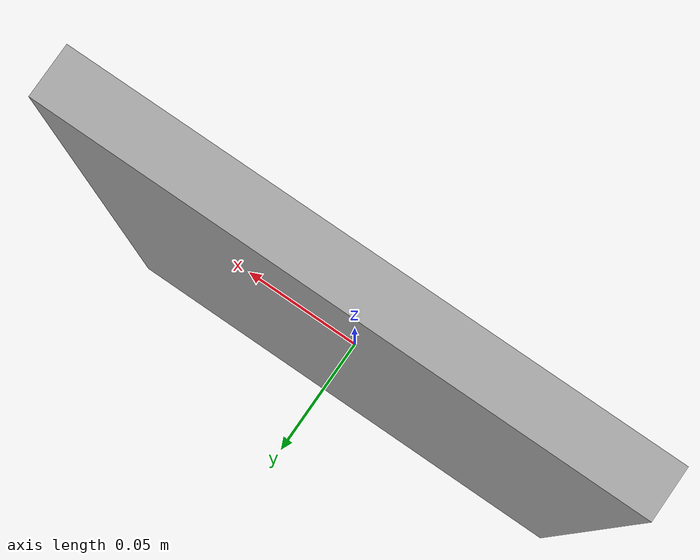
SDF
<?xml version='1.0'?>
<sdf version='1.5'>
  <model name='Big_box'>
    <link name='link'>
      <pose frame=''>0 0 0 0 -0 0</pose>
      <inertial>
        <mass>40</mass>
        <inertia>
          <ixx>1</ixx>
          <ixy>0</ixy>
          <ixz>0</ixz>
          <iyy>1</iyy>
          <iyz>0</iyz>
          <izz>1</izz>
        </inertia>
        <pose frame=''>0 0 0 0 -0 0</pose>
      </inertial>
      <self_collide>0</self_collide>
      <kinematic>0</kinematic>
      <gravity>1</gravity>
      <visual name='visual'>
        <geometry>
          <mesh>
            <uri>model://big_box/meshes/big_box.dae</uri>
            <scale>0.19 0.02 0.22</scale>
          </mesh>
        </geometry>
        <material>
          <shader type='pixel'>
            <normal_map>__default__</normal_map>
          </shader>
        </material>
        <pose frame=''>0 0 0 0 -0 0</pose>
        <cast_shadows>1</cast_shadows>
        <transparency>0</transparency>
      </visual>
      <collision name='collision'>
        <laser_retro>0</laser_retro>
        <max_contacts>10</max_contacts>
        <pose frame=''>0 0 0 0 -0 0</pose>
        <geometry>
          <box>
            <size>0.3 0.02 0.33</size>
          </box>
        </geometry>
        <surface>
          <friction>
            <ode>
              <mu>1</mu>
              <mu2>1</mu2>
              <fdir1>0 0 0</fdir1>
              <slip1>0</slip1>
              <slip2>0</slip2>
            </ode>
            <torsional>
              <coefficient>1</coefficient>
              <patch_radius>0</patch_radius>
              <surface_radius>0</surface_radius>
              <use_patch_radius>1</use_patch_radius>
              <ode>
                <slip>0</slip>
              </ode>
            </torsional>
          </friction>
          <bounce>
            <restitution_coefficient>0</restitution_coefficient>
            <threshold>1e+06</threshold>
          </bounce>
          <contact>
            <collide_without_contact>0</collide_without_contact>
            <collide_without_contact_bitmask>1</collide_without_contact_bitmask>
            <collide_bitmask>1</collide_bitmask>
            <ode>
              <soft_cfm>0</soft_cfm>
              <soft_erp>0.2</soft_erp>
              <kp>1e+13</kp>
              <kd>1</kd>
              <max_vel>0.1</max_vel>
              <min_depth>0.001</min_depth>
            </ode>
            <bullet>
              <split_impulse>1</split_impulse>
              <split_impulse_penetration_threshold>-0.01</split_impulse_penetration_threshold>
              <soft_cfm>0</soft_cfm>
              <soft_erp>0.2</soft_erp>
              <kp>1e+13</kp>
              <kd>1</kd>
            </bullet>
          </contact>
        </surface>
      </collision>
    </link>
    <static>0</static>
    <allow_auto_disable>1</allow_auto_disable>
  </model>
</sdf>
